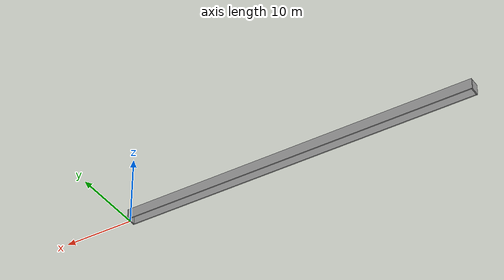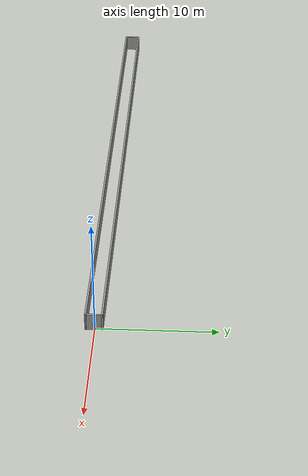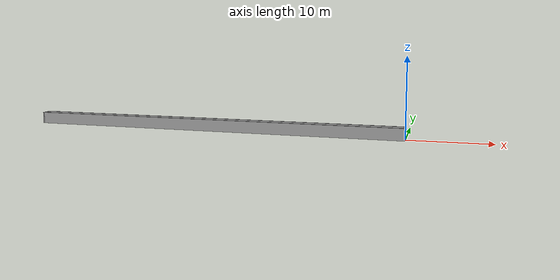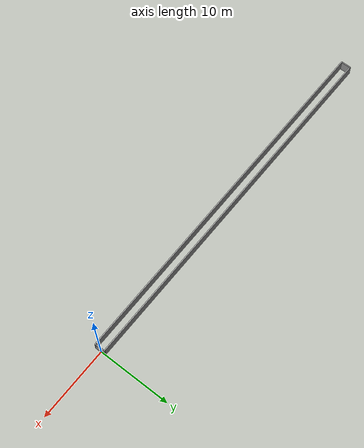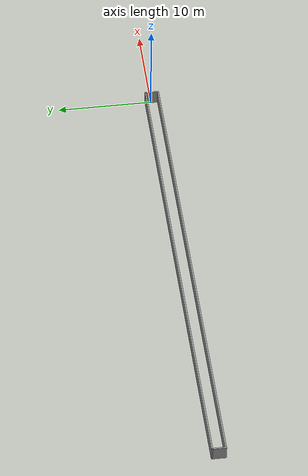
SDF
<?xml version='1.0'?>
<sdf version='1.6'>
  <model name='gallary'>
    <pose frame=''>-24.925 -0.075 0 0 -0 0</pose>
    <link name='Wall_10'>
      <collision name='Wall_10_Collision'>
        <geometry>
          <box>
            <size>50 0.15 1.5</size>
          </box>
        </geometry>
        <pose frame=''>0 0 0.75 0 -0 0</pose>
      </collision>
      <visual name='Wall_10_Visual'>
        <pose frame=''>0 0 0.75 0 -0 0</pose>
        <geometry>
          <box>
            <size>50 0.15 1.5</size>
          </box>
        </geometry>
        <material>
          <script>
            <uri>file://media/materials/scripts/gazebo.material</uri>
            <name>Gazebo/Grey</name>
          </script>
          <ambient>1 1 1 1</ambient>
        </material>
        <meta>
          <layer>0</layer>
        </meta>
      </visual>
      <pose frame=''>0 -0.675 0 0 -0 3.14159</pose>
    </link>
    <link name='Wall_12'>
      <collision name='Wall_12_Collision'>
        <geometry>
          <box>
            <size>1.5 0.15 1.5</size>
          </box>
        </geometry>
        <pose frame=''>0 0 0.75 0 -0 0</pose>
      </collision>
      <visual name='Wall_12_Visual'>
        <pose frame=''>0 0 0.75 0 -0 0</pose>
        <geometry>
          <box>
            <size>1.5 0.15 1.5</size>
          </box>
        </geometry>
        <material>
          <script>
            <uri>file://media/materials/scripts/gazebo.material</uri>
            <name>Gazebo/Grey</name>
          </script>
          <ambient>1 1 1 1</ambient>
        </material>
        <meta>
          <layer>0</layer>
        </meta>
      </visual>
      <pose frame=''>-24.925 -0 0 0 -0 -1.5708</pose>
    </link>
    <link name='Wall_5'>
      <collision name='Wall_5_Collision'>
        <geometry>
          <box>
            <size>1.5 0.15 1.5</size>
          </box>
        </geometry>
        <pose frame=''>0 0 0.75 0 -0 0</pose>
      </collision>
      <visual name='Wall_5_Visual'>
        <pose frame=''>0 0 0.75 0 -0 0</pose>
        <geometry>
          <box>
            <size>1.5 0.15 1.5</size>
          </box>
        </geometry>
        <material>
          <script>
            <uri>file://media/materials/scripts/gazebo.material</uri>
            <name>Gazebo/Grey</name>
          </script>
          <ambient>1 1 1 1</ambient>
        </material>
        <meta>
          <layer>0</layer>
        </meta>
      </visual>
      <pose frame=''>24.925 -0 0 0 -0 1.5708</pose>
    </link>
    <link name='Wall_8'>
      <collision name='Wall_8_Collision'>
        <geometry>
          <box>
            <size>50 0.15 1.5</size>
          </box>
        </geometry>
        <pose frame=''>0 0 0.75 0 -0 0</pose>
      </collision>
      <visual name='Wall_8_Visual'>
        <pose frame=''>0 0 0.75 0 -0 0</pose>
        <geometry>
          <box>
            <size>50 0.15 1.5</size>
          </box>
        </geometry>
        <material>
          <script>
            <uri>file://media/materials/scripts/gazebo.material</uri>
            <name>Gazebo/Grey</name>
          </script>
          <ambient>1 1 1 1</ambient>
        </material>
        <meta>
          <layer>0</layer>
        </meta>
      </visual>
      <pose frame=''>0 0.675 0 0 -0 3.14159</pose>
    </link>
    <static>1</static>
  </model>
</sdf>
